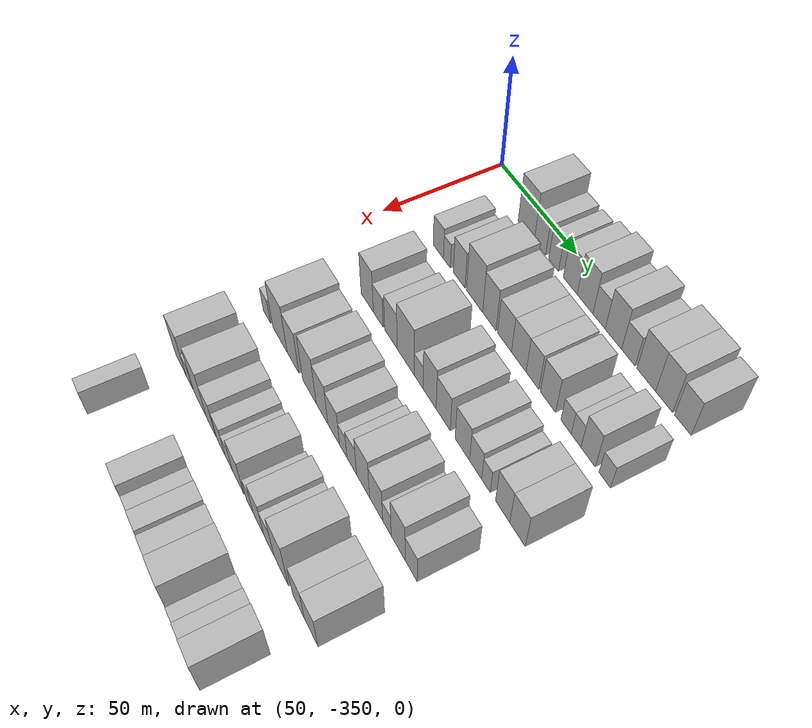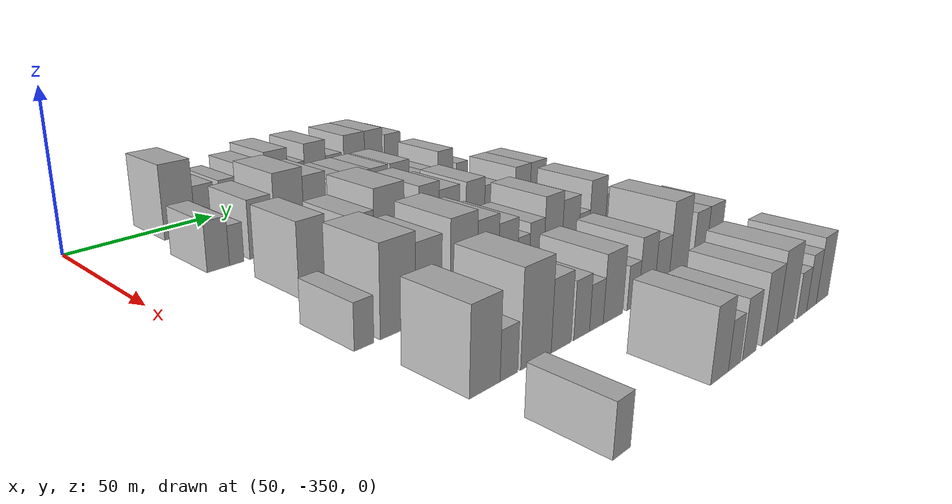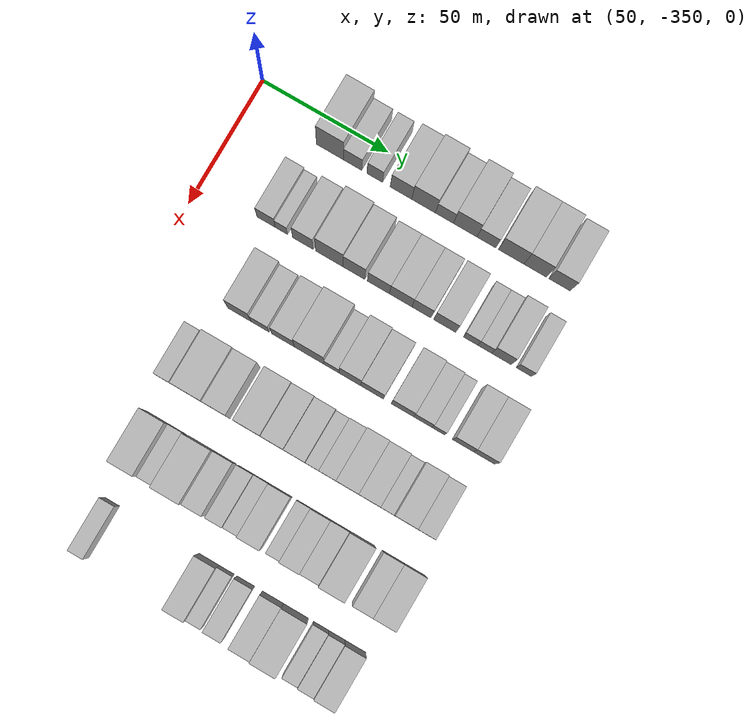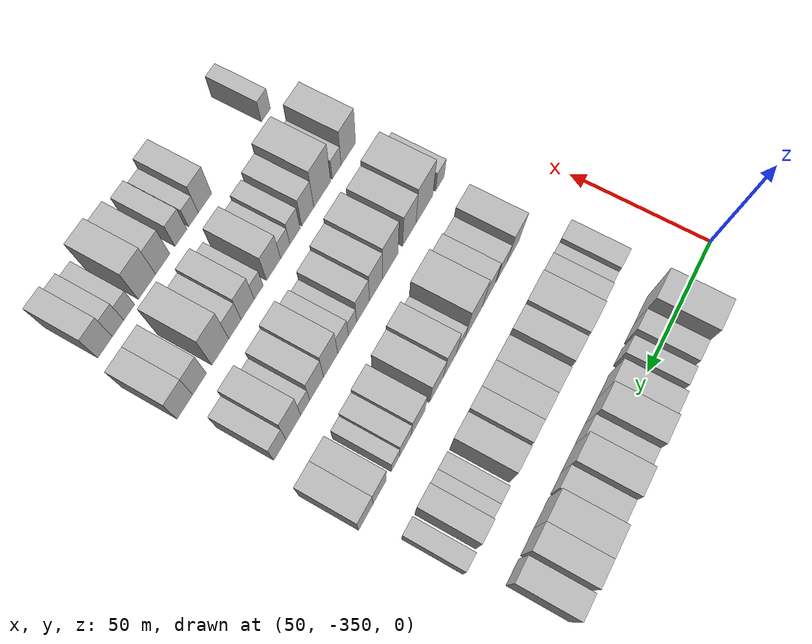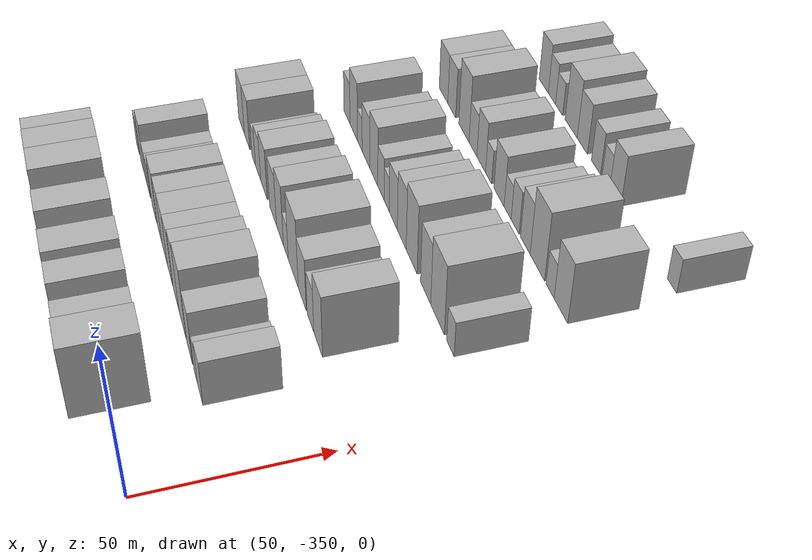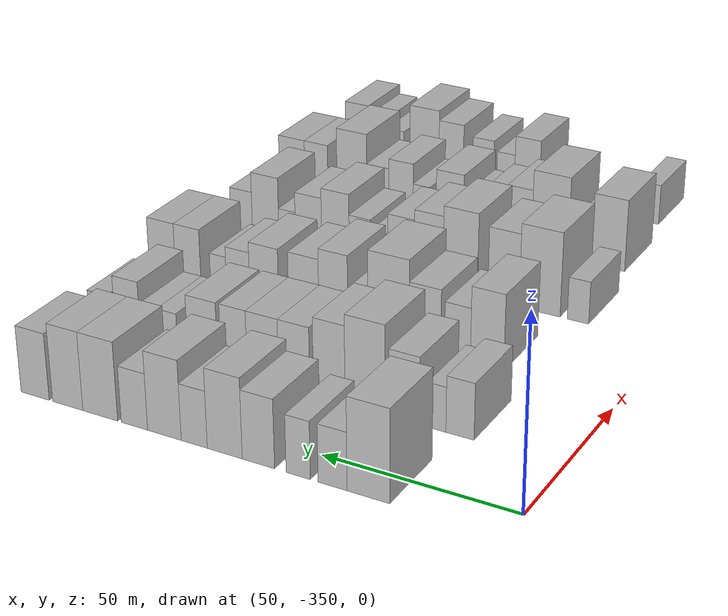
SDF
<sdf version="1.6">
 <world name="default">
  <model name="building_24">
   <static>1</static>
   <pose>50.0000 -317.3890 0 0.000000 0.000000 0.000000</pose>
   <link name="link">
    <pose>0 0 12.00 0 0 0</pose>
    <collision name="collision"><geometry><box><size>20.0000 10.6957 24.0000</size></box></geometry></collision>
    <visual name="visual">
     <cast_shadows>0</cast_shadows>
     <geometry><box><size>20.0000 10.6957 24.0000</size></box></geometry>
     <material>
      <script>
       <uri>model://HANNAS_wall/materials/scripts</uri>
       <uri>model://HANNAS_wall/materials/textures</uri>
       <name>vrc/HANNAS_wall</name>
      </script>
     </material>
    </visual>
   </link>
  </model>
  <model name="building_25">
   <static>1</static>
   <pose>50.0000 -308.3853 0 0.000000 0.000000 0.000000</pose>
   <link name="link">
    <pose>0 0 7.50 0 0 0</pose>
    <collision name="collision"><geometry><box><size>20.0000 7.3117 15.0000</size></box></geometry></collision>
    <visual name="visual">
     <cast_shadows>0</cast_shadows>
     <geometry><box><size>20.0000 7.3117 15.0000</size></box></geometry>
     <material>
      <script>
       <uri>model://HANNAS_wall/materials/scripts</uri>
       <uri>model://HANNAS_wall/materials/textures</uri>
       <name>vrc/HANNAS_wall</name>
      </script>
     </material>
    </visual>
   </link>
  </model>
  <model name="building_26">
   <static>1</static>
   <pose>50.0000 -299.6123 0 0.000000 0.000000 0.000000</pose>
   <link name="link">
    <pose>0 0 7.50 0 0 0</pose>
    <collision name="collision"><geometry><box><size>20.0000 6.2343 15.0000</size></box></geometry></collision>
    <visual name="visual">
     <cast_shadows>0</cast_shadows>
     <geometry><box><size>20.0000 6.2343 15.0000</size></box></geometry>
     <material>
      <script>
       <uri>model://HANNAS_wall/materials/scripts</uri>
       <uri>model://HANNAS_wall/materials/textures</uri>
       <name>vrc/HANNAS_wall</name>
      </script>
     </material>
    </visual>
   </link>
  </model>
  <model name="building_27">
   <static>1</static>
   <pose>50.0000 -289.2363 0 0.000000 0.000000 0.000000</pose>
   <link name="link">
    <pose>0 0 9.00 0 0 0</pose>
    <collision name="collision"><geometry><box><size>20.0000 8.5178 18.0000</size></box></geometry></collision>
    <visual name="visual">
     <cast_shadows>0</cast_shadows>
     <geometry><box><size>20.0000 8.5178 18.0000</size></box></geometry>
     <material>
      <script>
       <uri>model://HANNAS_wall/materials/scripts</uri>
       <uri>model://HANNAS_wall/materials/textures</uri>
       <name>vrc/HANNAS_wall</name>
      </script>
     </material>
    </visual>
   </link>
  </model>
  <model name="building_28">
   <static>1</static>
   <pose>50.0000 -280.2918 0 0.000000 0.000000 0.000000</pose>
   <link name="link">
    <pose>0 0 10.50 0 0 0</pose>
    <collision name="collision"><geometry><box><size>20.0000 9.3711 21.0000</size></box></geometry></collision>
    <visual name="visual">
     <cast_shadows>0</cast_shadows>
     <geometry><box><size>20.0000 9.3711 21.0000</size></box></geometry>
     <material>
      <script>
       <uri>model://HANNAS_wall/materials/scripts</uri>
       <uri>model://HANNAS_wall/materials/textures</uri>
       <name>vrc/HANNAS_wall</name>
      </script>
     </material>
    </visual>
   </link>
  </model>
  <model name="building_29">
   <static>1</static>
   <pose>50.0000 -272.0547 0 0.000000 0.000000 0.000000</pose>
   <link name="link">
    <pose>0 0 7.50 0 0 0</pose>
    <collision name="collision"><geometry><box><size>20.0000 7.1031 15.0000</size></box></geometry></collision>
    <visual name="visual">
     <cast_shadows>0</cast_shadows>
     <geometry><box><size>20.0000 7.1031 15.0000</size></box></geometry>
     <material>
      <script>
       <uri>model://HANNAS_wall/materials/scripts</uri>
       <uri>model://HANNAS_wall/materials/textures</uri>
       <name>vrc/HANNAS_wall</name>
      </script>
     </material>
    </visual>
   </link>
  </model>
  <model name="building_30">
   <static>1</static>
   <pose>50.0000 -263.8523 0 0.000000 0.000000 0.000000</pose>
   <link name="link">
    <pose>0 0 10.50 0 0 0</pose>
    <collision name="collision"><geometry><box><size>20.0000 9.3017 21.0000</size></box></geometry></collision>
    <visual name="visual">
     <cast_shadows>0</cast_shadows>
     <geometry><box><size>20.0000 9.3017 21.0000</size></box></geometry>
     <material>
      <script>
       <uri>model://HANNAS_wall/materials/scripts</uri>
       <uri>model://HANNAS_wall/materials/textures</uri>
       <name>vrc/HANNAS_wall</name>
      </script>
     </material>
    </visual>
   </link>
  </model>
  <model name="building_31">
   <static>1</static>
   <pose>50.0000 -255.4804 0 0.000000 0.000000 0.000000</pose>
   <link name="link">
    <pose>0 0 7.50 0 0 0</pose>
    <collision name="collision"><geometry><box><size>20.0000 7.4422 15.0000</size></box></geometry></collision>
    <visual name="visual">
     <cast_shadows>0</cast_shadows>
     <geometry><box><size>20.0000 7.4422 15.0000</size></box></geometry>
     <material>
      <script>
       <uri>model://HANNAS_wall/materials/scripts</uri>
       <uri>model://HANNAS_wall/materials/textures</uri>
       <name>vrc/HANNAS_wall</name>
      </script>
     </material>
    </visual>
   </link>
  </model>
  <model name="building_32">
   <static>1</static>
   <pose>50.0000 -245.7599 0 0.000000 0.000000 0.000000</pose>
   <link name="link">
    <pose>0 0 10.50 0 0 0</pose>
    <collision name="collision"><geometry><box><size>20.0000 9.9988 21.0000</size></box></geometry></collision>
    <visual name="visual">
     <cast_shadows>0</cast_shadows>
     <geometry><box><size>20.0000 9.9988 21.0000</size></box></geometry>
     <material>
      <script>
       <uri>model://HANNAS_wall/materials/scripts</uri>
       <uri>model://HANNAS_wall/materials/textures</uri>
       <name>vrc/HANNAS_wall</name>
      </script>
     </material>
    </visual>
   </link>
  </model>
  <model name="building_33">
   <static>1</static>
   <pose>50.0000 -236.3544 0 0.000000 0.000000 0.000000</pose>
   <link name="link">
    <pose>0 0 10.50 0 0 0</pose>
    <collision name="collision"><geometry><box><size>20.0000 8.8123 21.0000</size></box></geometry></collision>
    <visual name="visual">
     <cast_shadows>0</cast_shadows>
     <geometry><box><size>20.0000 8.8123 21.0000</size></box></geometry>
     <material>
      <script>
       <uri>model://HANNAS_wall/materials/scripts</uri>
       <uri>model://HANNAS_wall/materials/textures</uri>
       <name>vrc/HANNAS_wall</name>
      </script>
     </material>
    </visual>
   </link>
  </model>
  <model name="building_34">
   <static>1</static>
   <pose>50.0000 -226.7820 0 0.000000 0.000000 0.000000</pose>
   <link name="link">
    <pose>0 0 9.00 0 0 0</pose>
    <collision name="collision"><geometry><box><size>20.0000 8.3325 18.0000</size></box></geometry></collision>
    <visual name="visual">
     <cast_shadows>0</cast_shadows>
     <geometry><box><size>20.0000 8.3325 18.0000</size></box></geometry>
     <material>
      <script>
       <uri>model://HANNAS_wall/materials/scripts</uri>
       <uri>model://HANNAS_wall/materials/textures</uri>
       <name>vrc/HANNAS_wall</name>
      </script>
     </material>
    </visual>
   </link>
  </model>
  <model name="building_143">
   <static>1</static>
   <pose>82.0000 -323.7719 0 0.000000 0.000000 0.000000</pose>
   <link name="link">
    <pose>0 0 7.50 0 0 0</pose>
    <collision name="collision"><geometry><box><size>20.0000 7.2281 15.0000</size></box></geometry></collision>
    <visual name="visual">
     <cast_shadows>0</cast_shadows>
     <geometry><box><size>20.0000 7.2281 15.0000</size></box></geometry>
     <material>
      <script>
       <uri>model://HANNAS_wall/materials/scripts</uri>
       <uri>model://HANNAS_wall/materials/textures</uri>
       <name>vrc/HANNAS_wall</name>
      </script>
     </material>
    </visual>
   </link>
  </model>
  <model name="building_144">
   <static>1</static>
   <pose>82.0000 -317.7256 0 0.000000 0.000000 0.000000</pose>
   <link name="link">
    <pose>0 0 6.00 0 0 0</pose>
    <collision name="collision"><geometry><box><size>20.0000 4.8644 12.0000</size></box></geometry></collision>
    <visual name="visual">
     <cast_shadows>0</cast_shadows>
     <geometry><box><size>20.0000 4.8644 12.0000</size></box></geometry>
     <material>
      <script>
       <uri>model://HANNAS_wall/materials/scripts</uri>
       <uri>model://HANNAS_wall/materials/textures</uri>
       <name>vrc/HANNAS_wall</name>
      </script>
     </material>
    </visual>
   </link>
  </model>
  <model name="building_145">
   <static>1</static>
   <pose>82.0000 -309.2368 0 0.000000 0.000000 0.000000</pose>
   <link name="link">
    <pose>0 0 9.00 0 0 0</pose>
    <collision name="collision"><geometry><box><size>20.0000 8.1132 18.0000</size></box></geometry></collision>
    <visual name="visual">
     <cast_shadows>0</cast_shadows>
     <geometry><box><size>20.0000 8.1132 18.0000</size></box></geometry>
     <material>
      <script>
       <uri>model://HANNAS_wall/materials/scripts</uri>
       <uri>model://HANNAS_wall/materials/textures</uri>
       <name>vrc/HANNAS_wall</name>
      </script>
     </material>
    </visual>
   </link>
  </model>
  <model name="building_146">
   <static>1</static>
   <pose>82.0000 -298.8101 0 0.000000 0.000000 0.000000</pose>
   <link name="link">
    <pose>0 0 12.00 0 0 0</pose>
    <collision name="collision"><geometry><box><size>20.0000 10.7403 24.0000</size></box></geometry></collision>
    <visual name="visual">
     <cast_shadows>0</cast_shadows>
     <geometry><box><size>20.0000 10.7403 24.0000</size></box></geometry>
     <material>
      <script>
       <uri>model://HANNAS_wall/materials/scripts</uri>
       <uri>model://HANNAS_wall/materials/textures</uri>
       <name>vrc/HANNAS_wall</name>
      </script>
     </material>
    </visual>
   </link>
  </model>
  <model name="building_147">
   <static>1</static>
   <pose>82.0000 -289.1303 0 0.000000 0.000000 0.000000</pose>
   <link name="link">
    <pose>0 0 10.50 0 0 0</pose>
    <collision name="collision"><geometry><box><size>20.0000 8.6193 21.0000</size></box></geometry></collision>
    <visual name="visual">
     <cast_shadows>0</cast_shadows>
     <geometry><box><size>20.0000 8.6193 21.0000</size></box></geometry>
     <material>
      <script>
       <uri>model://HANNAS_wall/materials/scripts</uri>
       <uri>model://HANNAS_wall/materials/textures</uri>
       <name>vrc/HANNAS_wall</name>
      </script>
     </material>
    </visual>
   </link>
  </model>
  <model name="building_148">
   <static>1</static>
   <pose>82.0000 -279.4815 0 0.000000 0.000000 0.000000</pose>
   <link name="link">
    <pose>0 0 9.00 0 0 0</pose>
    <collision name="collision"><geometry><box><size>20.0000 8.6783 18.0000</size></box></geometry></collision>
    <visual name="visual">
     <cast_shadows>0</cast_shadows>
     <geometry><box><size>20.0000 8.6783 18.0000</size></box></geometry>
     <material>
      <script>
       <uri>model://HANNAS_wall/materials/scripts</uri>
       <uri>model://HANNAS_wall/materials/textures</uri>
       <name>vrc/HANNAS_wall</name>
      </script>
     </material>
    </visual>
   </link>
  </model>
  <model name="building_149">
   <static>1</static>
   <pose>82.0000 -270.6864 0 0.000000 0.000000 0.000000</pose>
   <link name="link">
    <pose>0 0 9.00 0 0 0</pose>
    <collision name="collision"><geometry><box><size>20.0000 8.9120 18.0000</size></box></geometry></collision>
    <visual name="visual">
     <cast_shadows>0</cast_shadows>
     <geometry><box><size>20.0000 8.9120 18.0000</size></box></geometry>
     <material>
      <script>
       <uri>model://HANNAS_wall/materials/scripts</uri>
       <uri>model://HANNAS_wall/materials/textures</uri>
       <name>vrc/HANNAS_wall</name>
      </script>
     </material>
    </visual>
   </link>
  </model>
  <model name="building_150">
   <static>1</static>
   <pose>82.0000 -262.5020 0 0.000000 0.000000 0.000000</pose>
   <link name="link">
    <pose>0 0 9.00 0 0 0</pose>
    <collision name="collision"><geometry><box><size>20.0000 7.4566 18.0000</size></box></geometry></collision>
    <visual name="visual">
     <cast_shadows>0</cast_shadows>
     <geometry><box><size>20.0000 7.4566 18.0000</size></box></geometry>
     <material>
      <script>
       <uri>model://HANNAS_wall/materials/scripts</uri>
       <uri>model://HANNAS_wall/materials/textures</uri>
       <name>vrc/HANNAS_wall</name>
      </script>
     </material>
    </visual>
   </link>
  </model>
  <model name="building_151">
   <static>1</static>
   <pose>82.0000 -253.4183 0 0.000000 0.000000 0.000000</pose>
   <link name="link">
    <pose>0 0 9.00 0 0 0</pose>
    <collision name="collision"><geometry><box><size>20.0000 8.7108 18.0000</size></box></geometry></collision>
    <visual name="visual">
     <cast_shadows>0</cast_shadows>
     <geometry><box><size>20.0000 8.7108 18.0000</size></box></geometry>
     <material>
      <script>
       <uri>model://HANNAS_wall/materials/scripts</uri>
       <uri>model://HANNAS_wall/materials/textures</uri>
       <name>vrc/HANNAS_wall</name>
      </script>
     </material>
    </visual>
   </link>
  </model>
  <model name="building_152">
   <static>1</static>
   <pose>82.0000 -243.2181 0 0.000000 0.000000 0.000000</pose>
   <link name="link">
    <pose>0 0 6.00 0 0 0</pose>
    <collision name="collision"><geometry><box><size>20.0000 5.6895 12.0000</size></box></geometry></collision>
    <visual name="visual">
     <cast_shadows>0</cast_shadows>
     <geometry><box><size>20.0000 5.6895 12.0000</size></box></geometry>
     <material>
      <script>
       <uri>model://HANNAS_wall/materials/scripts</uri>
       <uri>model://HANNAS_wall/materials/textures</uri>
       <name>vrc/HANNAS_wall</name>
      </script>
     </material>
    </visual>
   </link>
  </model>
  <model name="building_153">
   <static>1</static>
   <pose>82.0000 -237.6821 0 0.000000 0.000000 0.000000</pose>
   <link name="link">
    <pose>0 0 6.00 0 0 0</pose>
    <collision name="collision"><geometry><box><size>20.0000 5.3826 12.0000</size></box></geometry></collision>
    <visual name="visual">
     <cast_shadows>0</cast_shadows>
     <geometry><box><size>20.0000 5.3826 12.0000</size></box></geometry>
     <material>
      <script>
       <uri>model://HANNAS_wall/materials/scripts</uri>
       <uri>model://HANNAS_wall/materials/textures</uri>
       <name>vrc/HANNAS_wall</name>
      </script>
     </material>
    </visual>
   </link>
  </model>
  <model name="building_154">
   <static>1</static>
   <pose>82.0000 -231.1788 0 0.000000 0.000000 0.000000</pose>
   <link name="link">
    <pose>0 0 9.00 0 0 0</pose>
    <collision name="collision"><geometry><box><size>20.0000 7.6240 18.0000</size></box></geometry></collision>
    <visual name="visual">
     <cast_shadows>0</cast_shadows>
     <geometry><box><size>20.0000 7.6240 18.0000</size></box></geometry>
     <material>
      <script>
       <uri>model://HANNAS_wall/materials/scripts</uri>
       <uri>model://HANNAS_wall/materials/textures</uri>
       <name>vrc/HANNAS_wall</name>
      </script>
     </material>
    </visual>
   </link>
  </model>
  <model name="building_155">
   <static>1</static>
   <pose>82.0000 -222.3730 0 0.000000 0.000000 0.000000</pose>
   <link name="link">
    <pose>0 0 6.00 0 0 0</pose>
    <collision name="collision"><geometry><box><size>20.0000 5.9876 12.0000</size></box></geometry></collision>
    <visual name="visual">
     <cast_shadows>0</cast_shadows>
     <geometry><box><size>20.0000 5.9876 12.0000</size></box></geometry>
     <material>
      <script>
       <uri>model://HANNAS_wall/materials/scripts</uri>
       <uri>model://HANNAS_wall/materials/textures</uri>
       <name>vrc/HANNAS_wall</name>
      </script>
     </material>
    </visual>
   </link>
  </model>
  <model name="building_259">
   <static>1</static>
   <pose>114.0000 -315.2376 0 0.000000 0.000000 0.000000</pose>
   <link name="link">
    <pose>0 0 10.50 0 0 0</pose>
    <collision name="collision"><geometry><box><size>20.0000 9.0967 21.0000</size></box></geometry></collision>
    <visual name="visual">
     <cast_shadows>0</cast_shadows>
     <geometry><box><size>20.0000 9.0967 21.0000</size></box></geometry>
     <material>
      <script>
       <uri>model://HANNAS_wall/materials/scripts</uri>
       <uri>model://HANNAS_wall/materials/textures</uri>
       <name>vrc/HANNAS_wall</name>
      </script>
     </material>
    </visual>
   </link>
  </model>
  <model name="building_260">
   <static>1</static>
   <pose>114.0000 -307.1134 0 0.000000 0.000000 0.000000</pose>
   <link name="link">
    <pose>0 0 7.50 0 0 0</pose>
    <collision name="collision"><geometry><box><size>20.0000 7.1516 15.0000</size></box></geometry></collision>
    <visual name="visual">
     <cast_shadows>0</cast_shadows>
     <geometry><box><size>20.0000 7.1516 15.0000</size></box></geometry>
     <material>
      <script>
       <uri>model://HANNAS_wall/materials/scripts</uri>
       <uri>model://HANNAS_wall/materials/textures</uri>
       <name>vrc/HANNAS_wall</name>
      </script>
     </material>
    </visual>
   </link>
  </model>
  <model name="building_261">
   <static>1</static>
   <pose>114.0000 -298.0915 0 0.000000 0.000000 0.000000</pose>
   <link name="link">
    <pose>0 0 9.00 0 0 0</pose>
    <collision name="collision"><geometry><box><size>20.0000 8.8924 18.0000</size></box></geometry></collision>
    <visual name="visual">
     <cast_shadows>0</cast_shadows>
     <geometry><box><size>20.0000 8.8924 18.0000</size></box></geometry>
     <material>
      <script>
       <uri>model://HANNAS_wall/materials/scripts</uri>
       <uri>model://HANNAS_wall/materials/textures</uri>
       <name>vrc/HANNAS_wall</name>
      </script>
     </material>
    </visual>
   </link>
  </model>
  <model name="building_262">
   <static>1</static>
   <pose>114.0000 -287.8272 0 0.000000 0.000000 0.000000</pose>
   <link name="link">
    <pose>0 0 12.00 0 0 0</pose>
    <collision name="collision"><geometry><box><size>20.0000 11.6362 24.0000</size></box></geometry></collision>
    <visual name="visual">
     <cast_shadows>0</cast_shadows>
     <geometry><box><size>20.0000 11.6362 24.0000</size></box></geometry>
     <material>
      <script>
       <uri>model://HANNAS_wall/materials/scripts</uri>
       <uri>model://HANNAS_wall/materials/textures</uri>
       <name>vrc/HANNAS_wall</name>
      </script>
     </material>
    </visual>
   </link>
  </model>
  <model name="building_263">
   <static>1</static>
   <pose>114.0000 -279.0808 0 0.000000 0.000000 0.000000</pose>
   <link name="link">
    <pose>0 0 6.00 0 0 0</pose>
    <collision name="collision"><geometry><box><size>20.0000 5.8566 12.0000</size></box></geometry></collision>
    <visual name="visual">
     <cast_shadows>0</cast_shadows>
     <geometry><box><size>20.0000 5.8566 12.0000</size></box></geometry>
     <material>
      <script>
       <uri>model://HANNAS_wall/materials/scripts</uri>
       <uri>model://HANNAS_wall/materials/textures</uri>
       <name>vrc/HANNAS_wall</name>
      </script>
     </material>
    </visual>
   </link>
  </model>
  <model name="building_264">
   <static>1</static>
   <pose>114.0000 -271.9159 0 0.000000 0.000000 0.000000</pose>
   <link name="link">
    <pose>0 0 10.50 0 0 0</pose>
    <collision name="collision"><geometry><box><size>20.0000 8.4732 21.0000</size></box></geometry></collision>
    <visual name="visual">
     <cast_shadows>0</cast_shadows>
     <geometry><box><size>20.0000 8.4732 21.0000</size></box></geometry>
     <material>
      <script>
       <uri>model://HANNAS_wall/materials/scripts</uri>
       <uri>model://HANNAS_wall/materials/textures</uri>
       <name>vrc/HANNAS_wall</name>
      </script>
     </material>
    </visual>
   </link>
  </model>
  <model name="building_265">
   <static>1</static>
   <pose>114.0000 -263.2190 0 0.000000 0.000000 0.000000</pose>
   <link name="link">
    <pose>0 0 9.00 0 0 0</pose>
    <collision name="collision"><geometry><box><size>20.0000 8.9206 18.0000</size></box></geometry></collision>
    <visual name="visual">
     <cast_shadows>0</cast_shadows>
     <geometry><box><size>20.0000 8.9206 18.0000</size></box></geometry>
     <material>
      <script>
       <uri>model://HANNAS_wall/materials/scripts</uri>
       <uri>model://HANNAS_wall/materials/textures</uri>
       <name>vrc/HANNAS_wall</name>
      </script>
     </material>
    </visual>
   </link>
  </model>
  <model name="building_266">
   <static>1</static>
   <pose>114.0000 -251.3885 0 0.000000 0.000000 0.000000</pose>
   <link name="link">
    <pose>0 0 9.00 0 0 0</pose>
    <collision name="collision"><geometry><box><size>20.0000 8.7403 18.0000</size></box></geometry></collision>
    <visual name="visual">
     <cast_shadows>0</cast_shadows>
     <geometry><box><size>20.0000 8.7403 18.0000</size></box></geometry>
     <material>
      <script>
       <uri>model://HANNAS_wall/materials/scripts</uri>
       <uri>model://HANNAS_wall/materials/textures</uri>
       <name>vrc/HANNAS_wall</name>
      </script>
     </material>
    </visual>
   </link>
  </model>
  <model name="building_267">
   <static>1</static>
   <pose>114.0000 -243.4316 0 0.000000 0.000000 0.000000</pose>
   <link name="link">
    <pose>0 0 7.50 0 0 0</pose>
    <collision name="collision"><geometry><box><size>20.0000 7.1734 15.0000</size></box></geometry></collision>
    <visual name="visual">
     <cast_shadows>0</cast_shadows>
     <geometry><box><size>20.0000 7.1734 15.0000</size></box></geometry>
     <material>
      <script>
       <uri>model://HANNAS_wall/materials/scripts</uri>
       <uri>model://HANNAS_wall/materials/textures</uri>
       <name>vrc/HANNAS_wall</name>
      </script>
     </material>
    </visual>
   </link>
  </model>
  <model name="building_268">
   <static>1</static>
   <pose>114.0000 -237.3647 0 0.000000 0.000000 0.000000</pose>
   <link name="link">
    <pose>0 0 6.00 0 0 0</pose>
    <collision name="collision"><geometry><box><size>20.0000 4.9604 12.0000</size></box></geometry></collision>
    <visual name="visual">
     <cast_shadows>0</cast_shadows>
     <geometry><box><size>20.0000 4.9604 12.0000</size></box></geometry>
     <material>
      <script>
       <uri>model://HANNAS_wall/materials/scripts</uri>
       <uri>model://HANNAS_wall/materials/textures</uri>
       <name>vrc/HANNAS_wall</name>
      </script>
     </material>
    </visual>
   </link>
  </model>
  <model name="building_269">
   <static>1</static>
   <pose>114.0000 -227.8893 0 0.000000 0.000000 0.000000</pose>
   <link name="link">
    <pose>0 0 9.00 0 0 0</pose>
    <collision name="collision"><geometry><box><size>20.0000 7.9905 18.0000</size></box></geometry></collision>
    <visual name="visual">
     <cast_shadows>0</cast_shadows>
     <geometry><box><size>20.0000 7.9905 18.0000</size></box></geometry>
     <material>
      <script>
       <uri>model://HANNAS_wall/materials/scripts</uri>
       <uri>model://HANNAS_wall/materials/textures</uri>
       <name>vrc/HANNAS_wall</name>
      </script>
     </material>
    </visual>
   </link>
  </model>
  <model name="building_270">
   <static>1</static>
   <pose>114.0000 -219.6960 0 0.000000 0.000000 0.000000</pose>
   <link name="link">
    <pose>0 0 9.00 0 0 0</pose>
    <collision name="collision"><geometry><box><size>20.0000 8.3962 18.0000</size></box></geometry></collision>
    <visual name="visual">
     <cast_shadows>0</cast_shadows>
     <geometry><box><size>20.0000 8.3962 18.0000</size></box></geometry>
     <material>
      <script>
       <uri>model://HANNAS_wall/materials/scripts</uri>
       <uri>model://HANNAS_wall/materials/textures</uri>
       <name>vrc/HANNAS_wall</name>
      </script>
     </material>
    </visual>
   </link>
  </model>
  <model name="building_378">
   <static>1</static>
   <pose>146.0000 -325.6154 0 0.000000 0.000000 0.000000</pose>
   <link name="link">
    <pose>0 0 6.00 0 0 0</pose>
    <collision name="collision"><geometry><box><size>20.0000 5.9482 12.0000</size></box></geometry></collision>
    <visual name="visual">
     <cast_shadows>0</cast_shadows>
     <geometry><box><size>20.0000 5.9482 12.0000</size></box></geometry>
     <material>
      <script>
       <uri>model://HANNAS_wall/materials/scripts</uri>
       <uri>model://HANNAS_wall/materials/textures</uri>
       <name>vrc/HANNAS_wall</name>
      </script>
     </material>
    </visual>
   </link>
  </model>
  <model name="building_379">
   <static>1</static>
   <pose>146.0000 -314.8566 0 0.000000 0.000000 0.000000</pose>
   <link name="link">
    <pose>0 0 12.00 0 0 0</pose>
    <collision name="collision"><geometry><box><size>20.0000 11.5695 24.0000</size></box></geometry></collision>
    <visual name="visual">
     <cast_shadows>0</cast_shadows>
     <geometry><box><size>20.0000 11.5695 24.0000</size></box></geometry>
     <material>
      <script>
       <uri>model://HANNAS_wall/materials/scripts</uri>
       <uri>model://HANNAS_wall/materials/textures</uri>
       <name>vrc/HANNAS_wall</name>
      </script>
     </material>
    </visual>
   </link>
  </model>
  <model name="building_380">
   <static>1</static>
   <pose>146.0000 -304.5513 0 0.000000 0.000000 0.000000</pose>
   <link name="link">
    <pose>0 0 10.50 0 0 0</pose>
    <collision name="collision"><geometry><box><size>20.0000 9.0412 21.0000</size></box></geometry></collision>
    <visual name="visual">
     <cast_shadows>0</cast_shadows>
     <geometry><box><size>20.0000 9.0412 21.0000</size></box></geometry>
     <material>
      <script>
       <uri>model://HANNAS_wall/materials/scripts</uri>
       <uri>model://HANNAS_wall/materials/textures</uri>
       <name>vrc/HANNAS_wall</name>
      </script>
     </material>
    </visual>
   </link>
  </model>
  <model name="building_381">
   <static>1</static>
   <pose>146.0000 -291.9717 0 0.000000 0.000000 0.000000</pose>
   <link name="link">
    <pose>0 0 12.00 0 0 0</pose>
    <collision name="collision"><geometry><box><size>20.0000 10.1180 24.0000</size></box></geometry></collision>
    <visual name="visual">
     <cast_shadows>0</cast_shadows>
     <geometry><box><size>20.0000 10.1180 24.0000</size></box></geometry>
     <material>
      <script>
       <uri>model://HANNAS_wall/materials/scripts</uri>
       <uri>model://HANNAS_wall/materials/textures</uri>
       <name>vrc/HANNAS_wall</name>
      </script>
     </material>
    </visual>
   </link>
  </model>
  <model name="building_382">
   <static>1</static>
   <pose>146.0000 -282.6432 0 0.000000 0.000000 0.000000</pose>
   <link name="link">
    <pose>0 0 10.50 0 0 0</pose>
    <collision name="collision"><geometry><box><size>20.0000 8.5390 21.0000</size></box></geometry></collision>
    <visual name="visual">
     <cast_shadows>0</cast_shadows>
     <geometry><box><size>20.0000 8.5390 21.0000</size></box></geometry>
     <material>
      <script>
       <uri>model://HANNAS_wall/materials/scripts</uri>
       <uri>model://HANNAS_wall/materials/textures</uri>
       <name>vrc/HANNAS_wall</name>
      </script>
     </material>
    </visual>
   </link>
  </model>
  <model name="building_383">
   <static>1</static>
   <pose>146.0000 -274.3233 0 0.000000 0.000000 0.000000</pose>
   <link name="link">
    <pose>0 0 9.00 0 0 0</pose>
    <collision name="collision"><geometry><box><size>20.0000 8.1009 18.0000</size></box></geometry></collision>
    <visual name="visual">
     <cast_shadows>0</cast_shadows>
     <geometry><box><size>20.0000 8.1009 18.0000</size></box></geometry>
     <material>
      <script>
       <uri>model://HANNAS_wall/materials/scripts</uri>
       <uri>model://HANNAS_wall/materials/textures</uri>
       <name>vrc/HANNAS_wall</name>
      </script>
     </material>
    </visual>
   </link>
  </model>
  <model name="building_384">
   <static>1</static>
   <pose>146.0000 -267.6814 0 0.000000 0.000000 0.000000</pose>
   <link name="link">
    <pose>0 0 6.00 0 0 0</pose>
    <collision name="collision"><geometry><box><size>20.0000 5.1829 12.0000</size></box></geometry></collision>
    <visual name="visual">
     <cast_shadows>0</cast_shadows>
     <geometry><box><size>20.0000 5.1829 12.0000</size></box></geometry>
     <material>
      <script>
       <uri>model://HANNAS_wall/materials/scripts</uri>
       <uri>model://HANNAS_wall/materials/textures</uri>
       <name>vrc/HANNAS_wall</name>
      </script>
     </material>
    </visual>
   </link>
  </model>
  <model name="building_385">
   <static>1</static>
   <pose>146.0000 -261.8126 0 0.000000 0.000000 0.000000</pose>
   <link name="link">
    <pose>0 0 7.50 0 0 0</pose>
    <collision name="collision"><geometry><box><size>20.0000 6.5547 15.0000</size></box></geometry></collision>
    <visual name="visual">
     <cast_shadows>0</cast_shadows>
     <geometry><box><size>20.0000 6.5547 15.0000</size></box></geometry>
     <material>
      <script>
       <uri>model://HANNAS_wall/materials/scripts</uri>
       <uri>model://HANNAS_wall/materials/textures</uri>
       <name>vrc/HANNAS_wall</name>
      </script>
     </material>
    </visual>
   </link>
  </model>
  <model name="building_386">
   <static>1</static>
   <pose>146.0000 -254.2556 0 0.000000 0.000000 0.000000</pose>
   <link name="link">
    <pose>0 0 10.50 0 0 0</pose>
    <collision name="collision"><geometry><box><size>20.0000 8.5594 21.0000</size></box></geometry></collision>
    <visual name="visual">
     <cast_shadows>0</cast_shadows>
     <geometry><box><size>20.0000 8.5594 21.0000</size></box></geometry>
     <material>
      <script>
       <uri>model://HANNAS_wall/materials/scripts</uri>
       <uri>model://HANNAS_wall/materials/textures</uri>
       <name>vrc/HANNAS_wall</name>
      </script>
     </material>
    </visual>
   </link>
  </model>
  <model name="building_387">
   <static>1</static>
   <pose>146.0000 -245.8388 0 0.000000 0.000000 0.000000</pose>
   <link name="link">
    <pose>0 0 9.00 0 0 0</pose>
    <collision name="collision"><geometry><box><size>20.0000 8.2742 18.0000</size></box></geometry></collision>
    <visual name="visual">
     <cast_shadows>0</cast_shadows>
     <geometry><box><size>20.0000 8.2742 18.0000</size></box></geometry>
     <material>
      <script>
       <uri>model://HANNAS_wall/materials/scripts</uri>
       <uri>model://HANNAS_wall/materials/textures</uri>
       <name>vrc/HANNAS_wall</name>
      </script>
     </material>
    </visual>
   </link>
  </model>
  <model name="building_388">
   <static>1</static>
   <pose>146.0000 -239.0463 0 0.000000 0.000000 0.000000</pose>
   <link name="link">
    <pose>0 0 6.00 0 0 0</pose>
    <collision name="collision"><geometry><box><size>20.0000 5.3108 12.0000</size></box></geometry></collision>
    <visual name="visual">
     <cast_shadows>0</cast_shadows>
     <geometry><box><size>20.0000 5.3108 12.0000</size></box></geometry>
     <material>
      <script>
       <uri>model://HANNAS_wall/materials/scripts</uri>
       <uri>model://HANNAS_wall/materials/textures</uri>
       <name>vrc/HANNAS_wall</name>
      </script>
     </material>
    </visual>
   </link>
  </model>
  <model name="building_389">
   <static>1</static>
   <pose>146.0000 -232.1145 0 0.000000 0.000000 0.000000</pose>
   <link name="link">
    <pose>0 0 10.50 0 0 0</pose>
    <collision name="collision"><geometry><box><size>20.0000 8.5529 21.0000</size></box></geometry></collision>
    <visual name="visual">
     <cast_shadows>0</cast_shadows>
     <geometry><box><size>20.0000 8.5529 21.0000</size></box></geometry>
     <material>
      <script>
       <uri>model://HANNAS_wall/materials/scripts</uri>
       <uri>model://HANNAS_wall/materials/textures</uri>
       <name>vrc/HANNAS_wall</name>
      </script>
     </material>
    </visual>
   </link>
  </model>
  <model name="building_390">
   <static>1</static>
   <pose>146.0000 -224.3180 0 0.000000 0.000000 0.000000</pose>
   <link name="link">
    <pose>0 0 7.50 0 0 0</pose>
    <collision name="collision"><geometry><box><size>20.0000 7.0401 15.0000</size></box></geometry></collision>
    <visual name="visual">
     <cast_shadows>0</cast_shadows>
     <geometry><box><size>20.0000 7.0401 15.0000</size></box></geometry>
     <material>
      <script>
       <uri>model://HANNAS_wall/materials/scripts</uri>
       <uri>model://HANNAS_wall/materials/textures</uri>
       <name>vrc/HANNAS_wall</name>
      </script>
     </material>
    </visual>
   </link>
  </model>
  <model name="building_500">
   <static>1</static>
   <pose>178.0000 -320.6086 0 0.000000 0.000000 0.000000</pose>
   <link name="link">
    <pose>0 0 10.50 0 0 0</pose>
    <collision name="collision"><geometry><box><size>20.0000 9.6686 21.0000</size></box></geometry></collision>
    <visual name="visual">
     <cast_shadows>0</cast_shadows>
     <geometry><box><size>20.0000 9.6686 21.0000</size></box></geometry>
     <material>
      <script>
       <uri>model://HANNAS_wall/materials/scripts</uri>
       <uri>model://HANNAS_wall/materials/textures</uri>
       <name>vrc/HANNAS_wall</name>
      </script>
     </material>
    </visual>
   </link>
  </model>
  <model name="building_501">
   <static>1</static>
   <pose>178.0000 -312.8268 0 0.000000 0.000000 0.000000</pose>
   <link name="link">
    <pose>0 0 6.00 0 0 0</pose>
    <collision name="collision"><geometry><box><size>20.0000 5.8951 12.0000</size></box></geometry></collision>
    <visual name="visual">
     <cast_shadows>0</cast_shadows>
     <geometry><box><size>20.0000 5.8951 12.0000</size></box></geometry>
     <material>
      <script>
       <uri>model://HANNAS_wall/materials/scripts</uri>
       <uri>model://HANNAS_wall/materials/textures</uri>
       <name>vrc/HANNAS_wall</name>
      </script>
     </material>
    </visual>
   </link>
  </model>
  <model name="building_502">
   <static>1</static>
   <pose>178.0000 -303.4155 0 0.000000 0.000000 0.000000</pose>
   <link name="link">
    <pose>0 0 12.00 0 0 0</pose>
    <collision name="collision"><geometry><box><size>20.0000 10.9274 24.0000</size></box></geometry></collision>
    <visual name="visual">
     <cast_shadows>0</cast_shadows>
     <geometry><box><size>20.0000 10.9274 24.0000</size></box></geometry>
     <material>
      <script>
       <uri>model://HANNAS_wall/materials/scripts</uri>
       <uri>model://HANNAS_wall/materials/textures</uri>
       <name>vrc/HANNAS_wall</name>
      </script>
     </material>
    </visual>
   </link>
  </model>
  <model name="building_503">
   <static>1</static>
   <pose>178.0000 -294.1316 0 0.000000 0.000000 0.000000</pose>
   <link name="link">
    <pose>0 0 9.00 0 0 0</pose>
    <collision name="collision"><geometry><box><size>20.0000 7.6404 18.0000</size></box></geometry></collision>
    <visual name="visual">
     <cast_shadows>0</cast_shadows>
     <geometry><box><size>20.0000 7.6404 18.0000</size></box></geometry>
     <material>
      <script>
       <uri>model://HANNAS_wall/materials/scripts</uri>
       <uri>model://HANNAS_wall/materials/textures</uri>
       <name>vrc/HANNAS_wall</name>
      </script>
     </material>
    </visual>
   </link>
  </model>
  <model name="building_504">
   <static>1</static>
   <pose>178.0000 -286.0977 0 0.000000 0.000000 0.000000</pose>
   <link name="link">
    <pose>0 0 7.50 0 0 0</pose>
    <collision name="collision"><geometry><box><size>20.0000 6.4275 15.0000</size></box></geometry></collision>
    <visual name="visual">
     <cast_shadows>0</cast_shadows>
     <geometry><box><size>20.0000 6.4275 15.0000</size></box></geometry>
     <material>
      <script>
       <uri>model://HANNAS_wall/materials/scripts</uri>
       <uri>model://HANNAS_wall/materials/textures</uri>
       <name>vrc/HANNAS_wall</name>
      </script>
     </material>
    </visual>
   </link>
  </model>
  <model name="building_505">
   <static>1</static>
   <pose>178.0000 -279.9862 0 0.000000 0.000000 0.000000</pose>
   <link name="link">
    <pose>0 0 6.00 0 0 0</pose>
    <collision name="collision"><geometry><box><size>20.0000 5.7955 12.0000</size></box></geometry></collision>
    <visual name="visual">
     <cast_shadows>0</cast_shadows>
     <geometry><box><size>20.0000 5.7955 12.0000</size></box></geometry>
     <material>
      <script>
       <uri>model://HANNAS_wall/materials/scripts</uri>
       <uri>model://HANNAS_wall/materials/textures</uri>
       <name>vrc/HANNAS_wall</name>
      </script>
     </material>
    </visual>
   </link>
  </model>
  <model name="building_506">
   <static>1</static>
   <pose>178.0000 -272.7839 0 0.000000 0.000000 0.000000</pose>
   <link name="link">
    <pose>0 0 9.00 0 0 0</pose>
    <collision name="collision"><geometry><box><size>20.0000 8.6091 18.0000</size></box></geometry></collision>
    <visual name="visual">
     <cast_shadows>0</cast_shadows>
     <geometry><box><size>20.0000 8.6091 18.0000</size></box></geometry>
     <material>
      <script>
       <uri>model://HANNAS_wall/materials/scripts</uri>
       <uri>model://HANNAS_wall/materials/textures</uri>
       <name>vrc/HANNAS_wall</name>
      </script>
     </material>
    </visual>
   </link>
  </model>
  <model name="building_507">
   <static>1</static>
   <pose>178.0000 -263.8196 0 0.000000 0.000000 0.000000</pose>
   <link name="link">
    <pose>0 0 6.00 0 0 0</pose>
    <collision name="collision"><geometry><box><size>20.0000 5.3194 12.0000</size></box></geometry></collision>
    <visual name="visual">
     <cast_shadows>0</cast_shadows>
     <geometry><box><size>20.0000 5.3194 12.0000</size></box></geometry>
     <material>
      <script>
       <uri>model://HANNAS_wall/materials/scripts</uri>
       <uri>model://HANNAS_wall/materials/textures</uri>
       <name>vrc/HANNAS_wall</name>
      </script>
     </material>
    </visual>
   </link>
  </model>
  <model name="building_508">
   <static>1</static>
   <pose>178.0000 -257.3006 0 0.000000 0.000000 0.000000</pose>
   <link name="link">
    <pose>0 0 9.00 0 0 0</pose>
    <collision name="collision"><geometry><box><size>20.0000 7.7186 18.0000</size></box></geometry></collision>
    <visual name="visual">
     <cast_shadows>0</cast_shadows>
     <geometry><box><size>20.0000 7.7186 18.0000</size></box></geometry>
     <material>
      <script>
       <uri>model://HANNAS_wall/materials/scripts</uri>
       <uri>model://HANNAS_wall/materials/textures</uri>
       <name>vrc/HANNAS_wall</name>
      </script>
     </material>
    </visual>
   </link>
  </model>
  <model name="building_509">
   <static>1</static>
   <pose>178.0000 -249.8310 0 0.000000 0.000000 0.000000</pose>
   <link name="link">
    <pose>0 0 7.50 0 0 0</pose>
    <collision name="collision"><geometry><box><size>20.0000 7.2206 15.0000</size></box></geometry></collision>
    <visual name="visual">
     <cast_shadows>0</cast_shadows>
     <geometry><box><size>20.0000 7.2206 15.0000</size></box></geometry>
     <material>
      <script>
       <uri>model://HANNAS_wall/materials/scripts</uri>
       <uri>model://HANNAS_wall/materials/textures</uri>
       <name>vrc/HANNAS_wall</name>
      </script>
     </material>
    </visual>
   </link>
  </model>
  <model name="building_510">
   <static>1</static>
   <pose>178.0000 -241.3584 0 0.000000 0.000000 0.000000</pose>
   <link name="link">
    <pose>0 0 12.00 0 0 0</pose>
    <collision name="collision"><geometry><box><size>20.0000 9.7247 24.0000</size></box></geometry></collision>
    <visual name="visual">
     <cast_shadows>0</cast_shadows>
     <geometry><box><size>20.0000 9.7247 24.0000</size></box></geometry>
     <material>
      <script>
       <uri>model://HANNAS_wall/materials/scripts</uri>
       <uri>model://HANNAS_wall/materials/textures</uri>
       <name>vrc/HANNAS_wall</name>
      </script>
     </material>
    </visual>
   </link>
  </model>
  <model name="building_511">
   <static>1</static>
   <pose>178.0000 -229.6373 0 0.000000 0.000000 0.000000</pose>
   <link name="link">
    <pose>0 0 9.00 0 0 0</pose>
    <collision name="collision"><geometry><box><size>20.0000 7.7174 18.0000</size></box></geometry></collision>
    <visual name="visual">
     <cast_shadows>0</cast_shadows>
     <geometry><box><size>20.0000 7.7174 18.0000</size></box></geometry>
     <material>
      <script>
       <uri>model://HANNAS_wall/materials/scripts</uri>
       <uri>model://HANNAS_wall/materials/textures</uri>
       <name>vrc/HANNAS_wall</name>
      </script>
     </material>
    </visual>
   </link>
  </model>
  <model name="building_512">
   <static>1</static>
   <pose>178.0000 -221.4700 0 0.000000 0.000000 0.000000</pose>
   <link name="link">
    <pose>0 0 9.00 0 0 0</pose>
    <collision name="collision"><geometry><box><size>20.0000 8.6172 18.0000</size></box></geometry></collision>
    <visual name="visual">
     <cast_shadows>0</cast_shadows>
     <geometry><box><size>20.0000 8.6172 18.0000</size></box></geometry>
     <material>
      <script>
       <uri>model://HANNAS_wall/materials/scripts</uri>
       <uri>model://HANNAS_wall/materials/textures</uri>
       <name>vrc/HANNAS_wall</name>
      </script>
     </material>
    </visual>
   </link>
  </model>
  <model name="building_612">
   <static>1</static>
   <pose>210.0000 -319.8369 0 0.000000 0.000000 0.000000</pose>
   <link name="link">
    <pose>0 0 6.00 0 0 0</pose>
    <collision name="collision"><geometry><box><size>20.0000 5.8553 12.0000</size></box></geometry></collision>
    <visual name="visual">
     <cast_shadows>0</cast_shadows>
     <geometry><box><size>20.0000 5.8553 12.0000</size></box></geometry>
     <material>
      <script>
       <uri>model://HANNAS_wall/materials/scripts</uri>
       <uri>model://HANNAS_wall/materials/textures</uri>
       <name>vrc/HANNAS_wall</name>
      </script>
     </material>
    </visual>
   </link>
  </model>
  <model name="building_613">
   <static>1</static>
   <pose>210.0000 -281.8426 0 0.000000 0.000000 0.000000</pose>
   <link name="link">
    <pose>0 0 9.00 0 0 0</pose>
    <collision name="collision"><geometry><box><size>20.0000 8.0444 18.0000</size></box></geometry></collision>
    <visual name="visual">
     <cast_shadows>0</cast_shadows>
     <geometry><box><size>20.0000 8.0444 18.0000</size></box></geometry>
     <material>
      <script>
       <uri>model://HANNAS_wall/materials/scripts</uri>
       <uri>model://HANNAS_wall/materials/textures</uri>
       <name>vrc/HANNAS_wall</name>
      </script>
     </material>
    </visual>
   </link>
  </model>
  <model name="building_614">
   <static>1</static>
   <pose>210.0000 -274.9484 0 0.000000 0.000000 0.000000</pose>
   <link name="link">
    <pose>0 0 6.00 0 0 0</pose>
    <collision name="collision"><geometry><box><size>20.0000 5.7439 12.0000</size></box></geometry></collision>
    <visual name="visual">
     <cast_shadows>0</cast_shadows>
     <geometry><box><size>20.0000 5.7439 12.0000</size></box></geometry>
     <material>
      <script>
       <uri>model://HANNAS_wall/materials/scripts</uri>
       <uri>model://HANNAS_wall/materials/textures</uri>
       <name>vrc/HANNAS_wall</name>
      </script>
     </material>
    </visual>
   </link>
  </model>
  <model name="building_615">
   <static>1</static>
   <pose>210.0000 -267.6094 0 0.000000 0.000000 0.000000</pose>
   <link name="link">
    <pose>0 0 7.50 0 0 0</pose>
    <collision name="collision"><geometry><box><size>20.0000 6.9343 15.0000</size></box></geometry></collision>
    <visual name="visual">
     <cast_shadows>0</cast_shadows>
     <geometry><box><size>20.0000 6.9343 15.0000</size></box></geometry>
     <material>
      <script>
       <uri>model://HANNAS_wall/materials/scripts</uri>
       <uri>model://HANNAS_wall/materials/textures</uri>
       <name>vrc/HANNAS_wall</name>
      </script>
     </material>
    </visual>
   </link>
  </model>
  <model name="building_616">
   <static>1</static>
   <pose>210.0000 -257.0984 0 0.000000 0.000000 0.000000</pose>
   <link name="link">
    <pose>0 0 9.00 0 0 0</pose>
    <collision name="collision"><geometry><box><size>20.0000 8.0877 18.0000</size></box></geometry></collision>
    <visual name="visual">
     <cast_shadows>0</cast_shadows>
     <geometry><box><size>20.0000 8.0877 18.0000</size></box></geometry>
     <material>
      <script>
       <uri>model://HANNAS_wall/materials/scripts</uri>
       <uri>model://HANNAS_wall/materials/textures</uri>
       <name>vrc/HANNAS_wall</name>
      </script>
     </material>
    </visual>
   </link>
  </model>
  <model name="building_617">
   <static>1</static>
   <pose>210.0000 -248.1799 0 0.000000 0.000000 0.000000</pose>
   <link name="link">
    <pose>0 0 10.50 0 0 0</pose>
    <collision name="collision"><geometry><box><size>20.0000 9.7493 21.0000</size></box></geometry></collision>
    <visual name="visual">
     <cast_shadows>0</cast_shadows>
     <geometry><box><size>20.0000 9.7493 21.0000</size></box></geometry>
     <material>
      <script>
       <uri>model://HANNAS_wall/materials/scripts</uri>
       <uri>model://HANNAS_wall/materials/textures</uri>
       <name>vrc/HANNAS_wall</name>
      </script>
     </material>
    </visual>
   </link>
  </model>
  <model name="building_618">
   <static>1</static>
   <pose>210.0000 -238.3245 0 0.000000 0.000000 0.000000</pose>
   <link name="link">
    <pose>0 0 6.00 0 0 0</pose>
    <collision name="collision"><geometry><box><size>20.0000 5.9616 12.0000</size></box></geometry></collision>
    <visual name="visual">
     <cast_shadows>0</cast_shadows>
     <geometry><box><size>20.0000 5.9616 12.0000</size></box></geometry>
     <material>
      <script>
       <uri>model://HANNAS_wall/materials/scripts</uri>
       <uri>model://HANNAS_wall/materials/textures</uri>
       <name>vrc/HANNAS_wall</name>
      </script>
     </material>
    </visual>
   </link>
  </model>
  <model name="building_619">
   <static>1</static>
   <pose>210.0000 -232.2608 0 0.000000 0.000000 0.000000</pose>
   <link name="link">
    <pose>0 0 7.50 0 0 0</pose>
    <collision name="collision"><geometry><box><size>20.0000 6.1659 15.0000</size></box></geometry></collision>
    <visual name="visual">
     <cast_shadows>0</cast_shadows>
     <geometry><box><size>20.0000 6.1659 15.0000</size></box></geometry>
     <material>
      <script>
       <uri>model://HANNAS_wall/materials/scripts</uri>
       <uri>model://HANNAS_wall/materials/textures</uri>
       <name>vrc/HANNAS_wall</name>
      </script>
     </material>
    </visual>
   </link>
  </model>
  <model name="building_620">
   <static>1</static>
   <pose>210.0000 -225.2084 0 0.000000 0.000000 0.000000</pose>
   <link name="link">
    <pose>0 0 9.00 0 0 0</pose>
    <collision name="collision"><geometry><box><size>20.0000 7.9390 18.0000</size></box></geometry></collision>
    <visual name="visual">
     <cast_shadows>0</cast_shadows>
     <geometry><box><size>20.0000 7.9390 18.0000</size></box></geometry>
     <material>
      <script>
       <uri>model://HANNAS_wall/materials/scripts</uri>
       <uri>model://HANNAS_wall/materials/textures</uri>
       <name>vrc/HANNAS_wall</name>
      </script>
     </material>
    </visual>
   </link>
  </model>
 </world>
</sdf>
